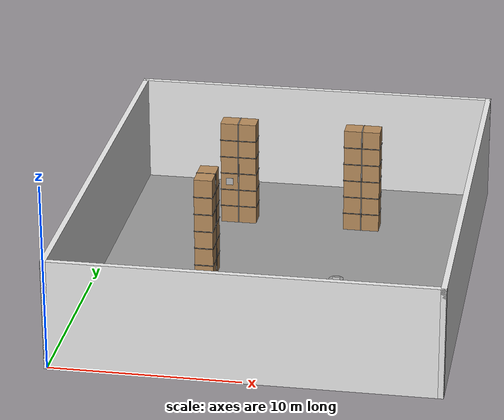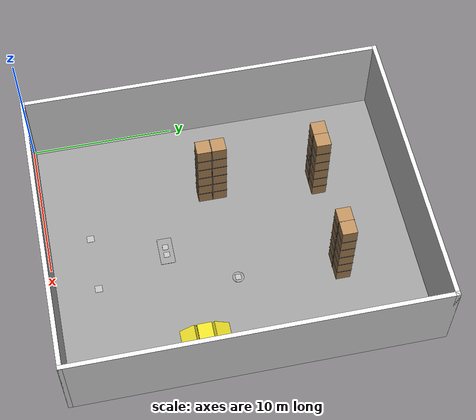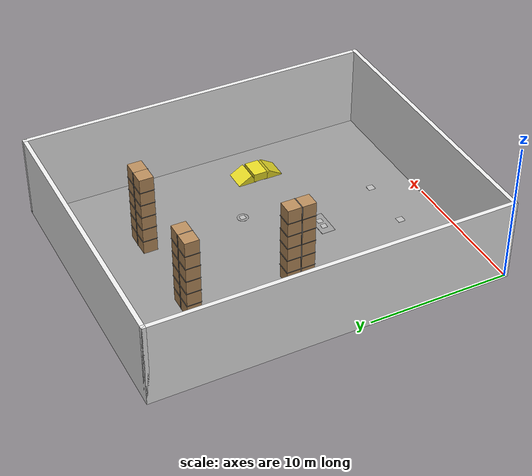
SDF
<?xml version="1.0" ?>
<!-- 本文件由 docker/scripts/gen_sample_room_world.py 生成，不要手工改。
     改布局请改 src/contest_mission/config/sample_room_layout.yaml 后重新生成。 -->
<sdf version='1.7'>
  <world name='default'>
    <plugin name='gazebo_ros_state' filename='libgazebo_ros_state.so'>
      <ros>
        <namespace>/plug</namespace>
        <argument>model_states:=model_states_plug</argument>
        <argument>link_states:=link_states_plug</argument>
      </ros>
      <update_rate>100.0</update_rate>
    </plugin>
    <light name='sun' type='directional'>
      <cast_shadows>1</cast_shadows>
      <pose>0 0 10 0 -0 0</pose>
      <diffuse>0.8 0.8 0.8 1</diffuse>
      <specular>0.2 0.2 0.2 1</specular>
      <attenuation>
        <range>1000</range>
        <constant>0.9</constant>
        <linear>0.01</linear>
        <quadratic>0.001</quadratic>
      </attenuation>
      <direction>-0.5 0.1 -0.9</direction>
      <spot>
        <inner_angle>0</inner_angle>
        <outer_angle>0</outer_angle>
        <falloff>0</falloff>
      </spot>
    </light>
    <gravity>0 0 -9.8</gravity>
    <magnetic_field>6e-06 2.3e-05 -4.2e-05</magnetic_field>
    <atmosphere type='adiabatic'/>
    <!-- max_step_size 必须保持 0.001：调大（0.002/0.004）会让 gzserver 在
         spawn 带 mavlink_interface 的 iris 时崩溃，详见 fire_drill_room.world
         同一处注释和 DEBUG_JOURNAL.md 2026-09-15 记录。 -->
    <physics type='ode'>
      <max_step_size>0.001</max_step_size>
      <real_time_factor>1</real_time_factor>
      <real_time_update_rate>1000</real_time_update_rate>
      <ode>
        <solver>
          <island_threads>8</island_threads>
          <thread_position_correction>1</thread_position_correction>
        </solver>
      </ode>
    </physics>
    <scene>
      <ambient>0.4 0.4 0.4 1</ambient>
      <background>0.7 0.7 0.7 1</background>
      <shadows>1</shadows>
    </scene>
    <audio>
      <device>default</device>
    </audio>
    <wind/>
    <spherical_coordinates>
      <surface_model>EARTH_WGS84</surface_model>
      <latitude_deg>0</latitude_deg>
      <longitude_deg>0</longitude_deg>
      <elevation>0</elevation>
      <heading_deg>0</heading_deg>
    </spherical_coordinates>

    <model name='ground_plane_map'>
      <static>1</static>
      <pose>10.0 12.5 0 0 0 0</pose>
      <link name='link'>
        <collision name='collision'>
          <geometry><plane><normal>0 0 1</normal><size>20.0 25.0</size></plane></geometry>
          <surface>
            <contact>
              <collide_without_contact>0</collide_without_contact>
              <ode>
                <kp>1000000.0</kp><kd>100.0</kd><max_vel>1.0</max_vel><min_depth>0.001</min_depth>
              </ode>
            </contact>
            <friction><ode><mu>100</mu><mu2>50</mu2></ode><torsional><ode/></torsional></friction>
            <bounce/>
          </surface>
          <max_contacts>10</max_contacts>
        </collision>
        <visual name='visual'>
          <cast_shadows>0</cast_shadows>
          <geometry><plane><normal>0 0 1</normal><size>20.0 25.0</size></plane></geometry>
          <material>
            <script>
              <uri>file://media/materials/scripts/gazebo.material</uri>
              <name>Gazebo/Grey</name>
            </script>
          </material>
        </visual>
        <self_collide>0</self_collide><enable_wind>0</enable_wind><kinematic>0</kinematic>
      </link>
    </model>

    <model name='room_wall_south'>
      <static>1</static>
      <pose>10.0 0 3.0 0 0 0</pose>
      <link name='link'>
        <collision name='collision'>
          <geometry><box><size>20.3 0.3 6.0</size></box></geometry>
        </collision>
        <visual name='visual'>
          <geometry><box><size>20.3 0.3 6.0</size></box></geometry>
          <material>
            <script>
              <uri>file://media/materials/scripts/gazebo.material</uri>
              <name>Gazebo/White</name>
            </script>
          </material>
        </visual>
      </link>
    </model>

    <model name='room_wall_north'>
      <static>1</static>
      <pose>10.0 25.0 3.0 0 0 0</pose>
      <link name='link'>
        <collision name='collision'>
          <geometry><box><size>20.3 0.3 6.0</size></box></geometry>
        </collision>
        <visual name='visual'>
          <geometry><box><size>20.3 0.3 6.0</size></box></geometry>
          <material>
            <script>
              <uri>file://media/materials/scripts/gazebo.material</uri>
              <name>Gazebo/White</name>
            </script>
          </material>
        </visual>
      </link>
    </model>

    <model name='room_wall_west'>
      <static>1</static>
      <pose>0 12.5 3.0 0 0 0</pose>
      <link name='link'>
        <collision name='collision'>
          <geometry><box><size>0.3 25.3 6.0</size></box></geometry>
        </collision>
        <visual name='visual'>
          <geometry><box><size>0.3 25.3 6.0</size></box></geometry>
          <material>
            <script>
              <uri>file://media/materials/scripts/gazebo.material</uri>
              <name>Gazebo/White</name>
            </script>
          </material>
        </visual>
      </link>
    </model>

    <model name='room_wall_east'>
      <static>1</static>
      <pose>20.0 12.5 3.0 0 0 0</pose>
      <link name='link'>
        <collision name='collision'>
          <geometry><box><size>0.3 25.3 6.0</size></box></geometry>
        </collision>
        <visual name='visual'>
          <geometry><box><size>0.3 25.3 6.0</size></box></geometry>
          <material>
            <script>
              <uri>file://media/materials/scripts/gazebo.material</uri>
              <name>Gazebo/White</name>
            </script>
          </material>
        </visual>
      </link>
    </model>

    <model name='ceiling'>
      <static>1</static>
      <pose>10.0 12.5 6.0 0 0 0</pose>
      <link name='link'>
        <collision name='collision'>
          <geometry><box><size>20.3 25.3 0.1</size></box></geometry>
          <surface>
            <contact>
              <collide_without_contact>0</collide_without_contact>
              <ode>
                <kp>1000000.0</kp><kd>100.0</kd><max_vel>1.0</max_vel><min_depth>0.001</min_depth>
              </ode>
            </contact>
            <friction><ode><mu>100</mu><mu2>50</mu2></ode><torsional><ode/></torsional></friction>
            <bounce/>
          </surface>
          <max_contacts>10</max_contacts>
        </collision>
        <self_collide>0</self_collide><enable_wind>0</enable_wind><kinematic>0</kinematic>
      </link>
    </model>

    <model name='pillar_1'>
      <static>1</static>
      <pose>6.0 12.5 3.0 0 0 0</pose>
      <link name='link'>
        <collision name='collision'>
          <geometry><box><size>1.0 1.0 6.0</size></box></geometry>
        </collision>
        <visual name='visual'>
          <geometry><box><size>1.0 1.0 6.0</size></box></geometry>
          <material>
            <ambient>0.72 0.55 0.36 1</ambient>
            <diffuse>0.72 0.55 0.36 1</diffuse>
          </material>
        </visual>
        <visual name='unit_divider'>
          <pose>0.000 -0.500 0 0 0 0</pose>
          <geometry><box><size>1.060 0.060 6.0</size></box></geometry>
          <material>
            <ambient>0.50 0.50 0.50 1</ambient>
            <diffuse>0.50 0.50 0.50 1</diffuse>
          </material>
        </visual>
        <visual name='floor_ring_1'>
          <pose>0 0 -2.000 0 0 0</pose>
          <geometry><box><size>1.060 1.060 0.04</size></box></geometry>
          <material>
            <ambient>0.50 0.50 0.50 1</ambient>
            <diffuse>0.50 0.50 0.50 1</diffuse>
          </material>
        </visual>
        <visual name='floor_ring_2'>
          <pose>0 0 -1.000 0 0 0</pose>
          <geometry><box><size>1.060 1.060 0.04</size></box></geometry>
          <material>
            <ambient>0.50 0.50 0.50 1</ambient>
            <diffuse>0.50 0.50 0.50 1</diffuse>
          </material>
        </visual>
        <visual name='floor_ring_3'>
          <pose>0 0 0.000 0 0 0</pose>
          <geometry><box><size>1.060 1.060 0.04</size></box></geometry>
          <material>
            <ambient>0.50 0.50 0.50 1</ambient>
            <diffuse>0.50 0.50 0.50 1</diffuse>
          </material>
        </visual>
        <visual name='floor_ring_4'>
          <pose>0 0 1.000 0 0 0</pose>
          <geometry><box><size>1.060 1.060 0.04</size></box></geometry>
          <material>
            <ambient>0.50 0.50 0.50 1</ambient>
            <diffuse>0.50 0.50 0.50 1</diffuse>
          </material>
        </visual>
        <visual name='floor_ring_5'>
          <pose>0 0 2.000 0 0 0</pose>
          <geometry><box><size>1.060 1.060 0.04</size></box></geometry>
          <material>
            <ambient>0.50 0.50 0.50 1</ambient>
            <diffuse>0.50 0.50 0.50 1</diffuse>
          </material>
        </visual>
      </link>
    </model>

    <model name='pillar_1_e'>
      <static>1</static>
      <pose>6.0 11.5 3.0 0 0 0</pose>
      <link name='link'>
        <collision name='collision'>
          <geometry><box><size>1.0 1.0 6.0</size></box></geometry>
        </collision>
        <visual name='visual'>
          <geometry><box><size>1.0 1.0 6.0</size></box></geometry>
          <material>
            <ambient>0.72 0.55 0.36 1</ambient>
            <diffuse>0.72 0.55 0.36 1</diffuse>
          </material>
        </visual>
        <visual name='floor_ring_1'>
          <pose>0 0 -2.000 0 0 0</pose>
          <geometry><box><size>1.060 1.060 0.04</size></box></geometry>
          <material>
            <ambient>0.50 0.50 0.50 1</ambient>
            <diffuse>0.50 0.50 0.50 1</diffuse>
          </material>
        </visual>
        <visual name='floor_ring_2'>
          <pose>0 0 -1.000 0 0 0</pose>
          <geometry><box><size>1.060 1.060 0.04</size></box></geometry>
          <material>
            <ambient>0.50 0.50 0.50 1</ambient>
            <diffuse>0.50 0.50 0.50 1</diffuse>
          </material>
        </visual>
        <visual name='floor_ring_3'>
          <pose>0 0 0.000 0 0 0</pose>
          <geometry><box><size>1.060 1.060 0.04</size></box></geometry>
          <material>
            <ambient>0.50 0.50 0.50 1</ambient>
            <diffuse>0.50 0.50 0.50 1</diffuse>
          </material>
        </visual>
        <visual name='floor_ring_4'>
          <pose>0 0 1.000 0 0 0</pose>
          <geometry><box><size>1.060 1.060 0.04</size></box></geometry>
          <material>
            <ambient>0.50 0.50 0.50 1</ambient>
            <diffuse>0.50 0.50 0.50 1</diffuse>
          </material>
        </visual>
        <visual name='floor_ring_5'>
          <pose>0 0 2.000 0 0 0</pose>
          <geometry><box><size>1.060 1.060 0.04</size></box></geometry>
          <material>
            <ambient>0.50 0.50 0.50 1</ambient>
            <diffuse>0.50 0.50 0.50 1</diffuse>
          </material>
        </visual>
      </link>
    </model>

    <model name='pillar_2'>
      <static>1</static>
      <pose>6.0 19.5 3.0 0 0 0</pose>
      <link name='link'>
        <collision name='collision'>
          <geometry><box><size>1.0 1.0 6.0</size></box></geometry>
        </collision>
        <visual name='visual'>
          <geometry><box><size>1.0 1.0 6.0</size></box></geometry>
          <material>
            <ambient>0.72 0.55 0.36 1</ambient>
            <diffuse>0.72 0.55 0.36 1</diffuse>
          </material>
        </visual>
        <visual name='unit_divider'>
          <pose>0.500 0.000 0 0 0 0</pose>
          <geometry><box><size>0.060 1.060 6.0</size></box></geometry>
          <material>
            <ambient>0.50 0.50 0.50 1</ambient>
            <diffuse>0.50 0.50 0.50 1</diffuse>
          </material>
        </visual>
        <visual name='floor_ring_1'>
          <pose>0 0 -2.000 0 0 0</pose>
          <geometry><box><size>1.060 1.060 0.04</size></box></geometry>
          <material>
            <ambient>0.50 0.50 0.50 1</ambient>
            <diffuse>0.50 0.50 0.50 1</diffuse>
          </material>
        </visual>
        <visual name='floor_ring_2'>
          <pose>0 0 -1.000 0 0 0</pose>
          <geometry><box><size>1.060 1.060 0.04</size></box></geometry>
          <material>
            <ambient>0.50 0.50 0.50 1</ambient>
            <diffuse>0.50 0.50 0.50 1</diffuse>
          </material>
        </visual>
        <visual name='floor_ring_3'>
          <pose>0 0 0.000 0 0 0</pose>
          <geometry><box><size>1.060 1.060 0.04</size></box></geometry>
          <material>
            <ambient>0.50 0.50 0.50 1</ambient>
            <diffuse>0.50 0.50 0.50 1</diffuse>
          </material>
        </visual>
        <visual name='floor_ring_4'>
          <pose>0 0 1.000 0 0 0</pose>
          <geometry><box><size>1.060 1.060 0.04</size></box></geometry>
          <material>
            <ambient>0.50 0.50 0.50 1</ambient>
            <diffuse>0.50 0.50 0.50 1</diffuse>
          </material>
        </visual>
        <visual name='floor_ring_5'>
          <pose>0 0 2.000 0 0 0</pose>
          <geometry><box><size>1.060 1.060 0.04</size></box></geometry>
          <material>
            <ambient>0.50 0.50 0.50 1</ambient>
            <diffuse>0.50 0.50 0.50 1</diffuse>
          </material>
        </visual>
      </link>
    </model>

    <model name='pillar_2_e'>
      <static>1</static>
      <pose>7.0 19.5 3.0 0 0 0</pose>
      <link name='link'>
        <collision name='collision'>
          <geometry><box><size>1.0 1.0 6.0</size></box></geometry>
        </collision>
        <visual name='visual'>
          <geometry><box><size>1.0 1.0 6.0</size></box></geometry>
          <material>
            <ambient>0.72 0.55 0.36 1</ambient>
            <diffuse>0.72 0.55 0.36 1</diffuse>
          </material>
        </visual>
        <visual name='floor_ring_1'>
          <pose>0 0 -2.000 0 0 0</pose>
          <geometry><box><size>1.060 1.060 0.04</size></box></geometry>
          <material>
            <ambient>0.50 0.50 0.50 1</ambient>
            <diffuse>0.50 0.50 0.50 1</diffuse>
          </material>
        </visual>
        <visual name='floor_ring_2'>
          <pose>0 0 -1.000 0 0 0</pose>
          <geometry><box><size>1.060 1.060 0.04</size></box></geometry>
          <material>
            <ambient>0.50 0.50 0.50 1</ambient>
            <diffuse>0.50 0.50 0.50 1</diffuse>
          </material>
        </visual>
        <visual name='floor_ring_3'>
          <pose>0 0 0.000 0 0 0</pose>
          <geometry><box><size>1.060 1.060 0.04</size></box></geometry>
          <material>
            <ambient>0.50 0.50 0.50 1</ambient>
            <diffuse>0.50 0.50 0.50 1</diffuse>
          </material>
        </visual>
        <visual name='floor_ring_4'>
          <pose>0 0 1.000 0 0 0</pose>
          <geometry><box><size>1.060 1.060 0.04</size></box></geometry>
          <material>
            <ambient>0.50 0.50 0.50 1</ambient>
            <diffuse>0.50 0.50 0.50 1</diffuse>
          </material>
        </visual>
        <visual name='floor_ring_5'>
          <pose>0 0 2.000 0 0 0</pose>
          <geometry><box><size>1.060 1.060 0.04</size></box></geometry>
          <material>
            <ambient>0.50 0.50 0.50 1</ambient>
            <diffuse>0.50 0.50 0.50 1</diffuse>
          </material>
        </visual>
      </link>
    </model>

    <model name='pillar_3'>
      <static>1</static>
      <pose>13.0 19.5 3.0 0 0 0</pose>
      <link name='link'>
        <collision name='collision'>
          <geometry><box><size>1.0 1.0 6.0</size></box></geometry>
        </collision>
        <visual name='visual'>
          <geometry><box><size>1.0 1.0 6.0</size></box></geometry>
          <material>
            <ambient>0.72 0.55 0.36 1</ambient>
            <diffuse>0.72 0.55 0.36 1</diffuse>
          </material>
        </visual>
        <visual name='unit_divider'>
          <pose>0.500 0.000 0 0 0 0</pose>
          <geometry><box><size>0.060 1.060 6.0</size></box></geometry>
          <material>
            <ambient>0.50 0.50 0.50 1</ambient>
            <diffuse>0.50 0.50 0.50 1</diffuse>
          </material>
        </visual>
        <visual name='floor_ring_1'>
          <pose>0 0 -2.000 0 0 0</pose>
          <geometry><box><size>1.060 1.060 0.04</size></box></geometry>
          <material>
            <ambient>0.50 0.50 0.50 1</ambient>
            <diffuse>0.50 0.50 0.50 1</diffuse>
          </material>
        </visual>
        <visual name='floor_ring_2'>
          <pose>0 0 -1.000 0 0 0</pose>
          <geometry><box><size>1.060 1.060 0.04</size></box></geometry>
          <material>
            <ambient>0.50 0.50 0.50 1</ambient>
            <diffuse>0.50 0.50 0.50 1</diffuse>
          </material>
        </visual>
        <visual name='floor_ring_3'>
          <pose>0 0 0.000 0 0 0</pose>
          <geometry><box><size>1.060 1.060 0.04</size></box></geometry>
          <material>
            <ambient>0.50 0.50 0.50 1</ambient>
            <diffuse>0.50 0.50 0.50 1</diffuse>
          </material>
        </visual>
        <visual name='floor_ring_4'>
          <pose>0 0 1.000 0 0 0</pose>
          <geometry><box><size>1.060 1.060 0.04</size></box></geometry>
          <material>
            <ambient>0.50 0.50 0.50 1</ambient>
            <diffuse>0.50 0.50 0.50 1</diffuse>
          </material>
        </visual>
        <visual name='floor_ring_5'>
          <pose>0 0 2.000 0 0 0</pose>
          <geometry><box><size>1.060 1.060 0.04</size></box></geometry>
          <material>
            <ambient>0.50 0.50 0.50 1</ambient>
            <diffuse>0.50 0.50 0.50 1</diffuse>
          </material>
        </visual>
      </link>
    </model>

    <model name='pillar_3_e'>
      <static>1</static>
      <pose>14.0 19.5 3.0 0 0 0</pose>
      <link name='link'>
        <collision name='collision'>
          <geometry><box><size>1.0 1.0 6.0</size></box></geometry>
        </collision>
        <visual name='visual'>
          <geometry><box><size>1.0 1.0 6.0</size></box></geometry>
          <material>
            <ambient>0.72 0.55 0.36 1</ambient>
            <diffuse>0.72 0.55 0.36 1</diffuse>
          </material>
        </visual>
        <visual name='floor_ring_1'>
          <pose>0 0 -2.000 0 0 0</pose>
          <geometry><box><size>1.060 1.060 0.04</size></box></geometry>
          <material>
            <ambient>0.50 0.50 0.50 1</ambient>
            <diffuse>0.50 0.50 0.50 1</diffuse>
          </material>
        </visual>
        <visual name='floor_ring_2'>
          <pose>0 0 -1.000 0 0 0</pose>
          <geometry><box><size>1.060 1.060 0.04</size></box></geometry>
          <material>
            <ambient>0.50 0.50 0.50 1</ambient>
            <diffuse>0.50 0.50 0.50 1</diffuse>
          </material>
        </visual>
        <visual name='floor_ring_3'>
          <pose>0 0 0.000 0 0 0</pose>
          <geometry><box><size>1.060 1.060 0.04</size></box></geometry>
          <material>
            <ambient>0.50 0.50 0.50 1</ambient>
            <diffuse>0.50 0.50 0.50 1</diffuse>
          </material>
        </visual>
        <visual name='floor_ring_4'>
          <pose>0 0 1.000 0 0 0</pose>
          <geometry><box><size>1.060 1.060 0.04</size></box></geometry>
          <material>
            <ambient>0.50 0.50 0.50 1</ambient>
            <diffuse>0.50 0.50 0.50 1</diffuse>
          </material>
        </visual>
        <visual name='floor_ring_5'>
          <pose>0 0 2.000 0 0 0</pose>
          <geometry><box><size>1.060 1.060 0.04</size></box></geometry>
          <material>
            <ambient>0.50 0.50 0.50 1</ambient>
            <diffuse>0.50 0.50 0.50 1</diffuse>
          </material>
        </visual>
      </link>
    </model>

    <model name='supply_point_marker'>
      <static>1</static>
      <pose>10.0 8.0 0 0 0 0</pose>
      <link name='link'>
        <visual name='visual_base'>
          <cast_shadows>0</cast_shadows>
          <pose>0 0 0.01 0 0 0</pose>
          <geometry><box><size>2.0 1.0 0.02</size></box></geometry>
          <material>
            <script>
              <uri>file://media/materials/scripts/gazebo.material</uri>
              <name>Gazebo/Grey</name>
            </script>
          </material>
        </visual>
        <visual name='visual_apriltag'>
          <cast_shadows>0</cast_shadows>
          <pose>-0.3 0.0 0.025 0 0 0</pose>
          <geometry><box><size>0.4 0.4 0.01</size></box></geometry>
          <material>
            <script>
              <uri>file://media/materials/scripts/contest_markers.material</uri>
              <name>ContestMarkers/AprilTagSupply</name>
            </script>
          </material>
        </visual>
        <visual name='visual_apriltag_2'>
          <cast_shadows>0</cast_shadows>
          <pose>0.3 0.0 0.025 0 0 0</pose>
          <geometry><box><size>0.4 0.4 0.01</size></box></geometry>
          <material>
            <script>
              <uri>file://media/materials/scripts/contest_markers.material</uri>
              <name>ContestMarkers/AprilTagSupplyHigh</name>
            </script>
          </material>
        </visual>
      </link>
    </model>

    <model name='fire_point_marker'>
      <static>1</static>
      <pose>13.0 12.5 0 0 0 0</pose>
      <link name='link'>
        <visual name='visual_base'>
          <cast_shadows>0</cast_shadows>
          <pose>0 0 0.01 0 0 0</pose>
          <geometry><cylinder><radius>0.4</radius><length>0.02</length></cylinder></geometry>
          <material>
            <script>
              <uri>file://media/materials/scripts/gazebo.material</uri>
              <name>Gazebo/Grey</name>
            </script>
          </material>
        </visual>
        <visual name='visual_apriltag'>
          <cast_shadows>0</cast_shadows>
          <pose>0.0 0.0 0.025 0 0 0</pose>
          <geometry><box><size>0.4 0.4 0.01</size></box></geometry>
          <material>
            <script>
              <uri>file://media/materials/scripts/contest_markers.material</uri>
              <name>ContestMarkers/AprilTagGroundFire</name>
            </script>
          </material>
        </visual>
      </link>
    </model>

    <model name='fire_apriltag_marker'>
      <static>1</static>
      <pose>6.00 18.99 2.5 0 0 0.0000000</pose>
      <link name='link'>
        <visual name='visual'>
          <cast_shadows>0</cast_shadows>
          <geometry><box><size>0.4 0.01 0.4</size></box></geometry>
          <material>
            <script>
              <uri>file://media/materials/scripts/contest_markers.material</uri>
              <name>ContestMarkers/AprilTagFirePillar</name>
            </script>
          </material>
        </visual>
      </link>
    </model>

    <model name='terrain_module'>
      <static>1</static>
      <pose>17.0 9.5 0.0 0 0 0</pose>
      <link name='link'>
        <collision name='top_col'>
          <pose>0 0 0.3 0 0 0</pose>
          <geometry><box><size>1.5 1.0 0.6</size></box></geometry>
        </collision>
        <visual name='top_vis'>
          <pose>0 0 0.3 0 0 0</pose>
          <geometry><box><size>1.5 1.0 0.6</size></box></geometry>
          <material>
            <script>
              <uri>file://media/materials/scripts/gazebo.material</uri>
              <name>Gazebo/Yellow</name>
            </script>
          </material>
        </visual>
        <collision name='ramp_north_col'>
          <pose>0 1.000 -0.000 -0.540420 0 0</pose>
          <geometry><box><size>1.5 1.166 0.720</size></box></geometry>
        </collision>
        <visual name='ramp_north_vis'>
          <pose>0 1.000 -0.000 -0.540420 0 0</pose>
          <geometry><box><size>1.5 1.166 0.720</size></box></geometry>
          <material>
            <script>
              <uri>file://media/materials/scripts/gazebo.material</uri>
              <name>Gazebo/Yellow</name>
            </script>
          </material>
        </visual>
        <collision name='ramp_south_col'>
          <pose>0 -1.000 -0.000 0.540420 0 0</pose>
          <geometry><box><size>1.5 1.166 0.720</size></box></geometry>
        </collision>
        <visual name='ramp_south_vis'>
          <pose>0 -1.000 -0.000 0.540420 0 0</pose>
          <geometry><box><size>1.5 1.166 0.720</size></box></geometry>
          <material>
            <script>
              <uri>file://media/materials/scripts/gazebo.material</uri>
              <name>Gazebo/Yellow</name>
            </script>
          </material>
        </visual>
      </link>
    </model>

    <model name='helipad_nx01'>
      <static>1</static>
      <pose>8.0 3.0 0.005 0 0 1.5707963</pose>
      <link name='link'>
        <visual name='visual'>
          <cast_shadows>0</cast_shadows>
          <geometry><box><size>0.5 0.5 0.01</size></box></geometry>
          <material>
            <script>
              <uri>file://media/materials/scripts/contest_markers.material</uri>
              <name>ContestMarkers/HelipadMarker</name>
            </script>
          </material>
        </visual>
      </link>
    </model>

    <model name='helipad_nx02'>
      <static>1</static>
      <pose>12.0 3.0 0.005 0 0 1.5707963</pose>
      <link name='link'>
        <visual name='visual'>
          <cast_shadows>0</cast_shadows>
          <geometry><box><size>0.5 0.5 0.01</size></box></geometry>
          <material>
            <script>
              <uri>file://media/materials/scripts/contest_markers.material</uri>
              <name>ContestMarkers/HelipadMarker</name>
            </script>
          </material>
        </visual>
      </link>
    </model>

    <gui fullscreen='0'>
      <camera name='user_camera'>
        <pose>10.0 -8 16 0 0.75 1.5707963</pose>
        <view_controller>orbit</view_controller>
        <projection_type>perspective</projection_type>
      </camera>
    </gui>

  </world>
</sdf>
